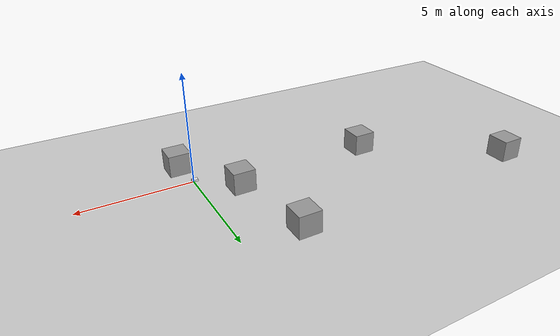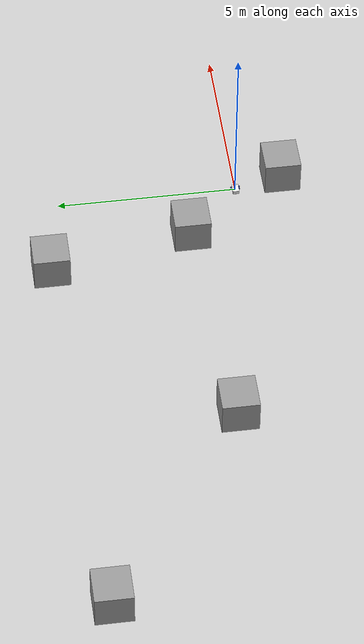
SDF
<sdf version="1.7">
 <world name="default">
  <light name="sun" type="directional">
   <pose>0 0 10 0 -0 0</pose>
   <diffuse>0.8 0.8 0.8 1</diffuse>
   <specular>0.2 0.2 0.2 1</specular>
   <attenuation>
    <range>1000</range>
    <constant>0.9</constant>
    <linear>0.01</linear>
    <quadratic>0.001</quadratic>
   </attenuation>
   <direction>-0.5 0.1 -0.9</direction>
   <spot><inner_angle>0</inner_angle><outer_angle>0</outer_angle><falloff>0</falloff></spot>
  </light>
  <model name="ground_plane">
   <static>1</static>
   <link name="link">
    <collision name="collision">
     <geometry><plane><normal>0 0 1</normal><size>100 100</size></plane></geometry>
     <surface>
      <contact><collide_bitmask>65535</collide_bitmask></contact>
      <friction><ode><mu>100</mu><mu2>50</mu2></ode></friction>
     </surface>
    </collision>
    <visual name="visual">
     <cast_shadows>0</cast_shadows>
     <geometry><plane><normal>0 0 1</normal><size>100 100</size></plane></geometry>
     <material>
      <script><uri>file://media/materials/scripts/gazebo.material</uri><name>Gazebo/Grey</name></script>
     </material>
    </visual>
   </link>
  </model>
  <gravity>0 0 -9.8</gravity>
  <magnetic_field>6e-06 2.3e-05 -4.2e-05</magnetic_field>
  <atmosphere type="adiabatic"/>
  <physics type="ode">
   <max_step_size>0.001</max_step_size>
   <real_time_factor>1</real_time_factor>
   <real_time_update_rate>1000</real_time_update_rate>
  </physics>
  <scene><ambient>0.4 0.4 0.4 1</ambient><background>0.7 0.7 0.7 1</background><shadows>1</shadows></scene>
  <audio><device>default</device></audio>
  <spherical_coordinates>
   <surface_model>EARTH_WGS84</surface_model>
   <latitude_deg>0</latitude_deg>
   <longitude_deg>0</longitude_deg>
   <elevation>0</elevation>
   <heading_deg>0</heading_deg>
  </spherical_coordinates>
  <model name="my_bot">
   <link name="base_link">
    <inertial>
     <pose>-0.052174 0 0.024348 0 -0 0</pose>
     <mass>2.3</mass>
     <inertia>
      <ixx>0.00873886</ixx>
      <ixy>0</ixy>
      <ixz>-0.00224174</ixz>
      <iyy>0.018838</iyy>
      <iyz>0</iyz>
      <izz>0.0209931</izz>
     </inertia>
    </inertial>
    <collision name="base_link_fixed_joint_lump__chassis_collision">
     <pose>-0.055 0 0.02 0 -0 0</pose>
     <geometry><box><size>0.27 0.18 0.1</size></box></geometry>
    </collision>
    <collision name="base_link_fixed_joint_lump__caster_wheel_collision_1">
     <pose>-0.18 0 -0.04 0 -0 0</pose>
     <geometry><sphere><radius>0.01</radius></sphere></geometry>
     <surface><friction><ode><mu>0.001</mu><mu2>0.001</mu2></ode></friction></surface>
    </collision>
    <collision name="base_link_fixed_joint_lump__laser_frame_collision_2">
     <pose>0.04 0 0.1 0 -0 0</pose>
     <geometry><cylinder><length>0.04</length><radius>0.03</radius></cylinder></geometry>
    </collision>
    <visual name="base_link_fixed_joint_lump__chassis_visual">
     <pose>-0.055 0 0.02 0 -0 0</pose>
     <geometry><box><size>0.27 0.18 0.1</size></box></geometry>
     <material>
      <script><name>Gazebo/White</name><uri>file://media/materials/scripts/gazebo.material</uri></script>
     </material>
    </visual>
    <visual name="base_link_fixed_joint_lump__camera_link_visual_1">
     <pose>0.08 0 0.02 0 -0 0</pose>
     <geometry><box><size>0.01 0.05 0.02</size></box></geometry>
     <material>
      <script><name>Gazebo/Red</name><uri>file://media/materials/scripts/gazebo.material</uri></script>
     </material>
    </visual>
    <visual name="base_link_fixed_joint_lump__caster_wheel_visual_2">
     <pose>-0.18 0 -0.04 0 -0 0</pose>
     <geometry><sphere><radius>0.01</radius></sphere></geometry>
     <material>
      <script><name>Gazebo/Black</name><uri>file://media/materials/scripts/gazebo.material</uri></script>
     </material>
    </visual>
    <visual name="base_link_fixed_joint_lump__laser_frame_visual_3">
     <pose>0.04 0 0.1 0 -0 0</pose>
     <geometry><cylinder><length>0.04</length><radius>0.03</radius></cylinder></geometry>
     <material>
      <script><name>Gazebo/Red</name><uri>file://media/materials/scripts/gazebo.material</uri></script>
     </material>
    </visual>
    <sensor name="camera" type="camera">
     <visualize>1</visualize>
     <update_rate>10</update_rate>
     <camera>
      <horizontal_fov>1.089</horizontal_fov>
      <image><format>R8G8B8</format><width>640</width><height>480</height></image>
      <clip><near>0.05</near><far>8</far></clip>
     </camera>
     <plugin name="camera_controller" filename="libgazebo_ros_camera.so">
      <frame_name>camera_link_optical</frame_name>
     </plugin>
     <pose>0.08 0 0.02 0 -0 0</pose>
    </sensor>
    <sensor name="laser" type="ray">
     <visualize>1</visualize>
     <update_rate>10</update_rate>
     <ray>
      <scan>
       <horizontal>
        <samples>360</samples>
        <min_angle>-3.14</min_angle>
        <max_angle>3.14</max_angle>
        <resolution>1</resolution>
       </horizontal>
       <vertical><samples>1</samples><min_angle>0</min_angle><max_angle>0</max_angle></vertical>
      </scan>
      <range><min>0.3</min><max>12</max></range>
     </ray>
     <plugin name="laser_controller" filename="libgazebo_ros_ray_sensor.so">
      <ros><argument>~/out:=scan</argument></ros>
      <output_type>sensor_msgs/LaserScan</output_type>
      <frame_name>laser_frame</frame_name>
     </plugin>
     <pose>0.04 0 0.1 0 -0 0</pose>
    </sensor>
   </link>
   <joint name="left_wheel_joint" type="revolute">
    <pose relative_to="base_link">0 0.1175 0 -1.5708 0 0</pose>
    <parent>base_link</parent>
    <child>left_wheel</child>
    <axis>
     <xyz>0 0 1</xyz>
     <limit><lower>-1e+16</lower><upper>1e+16</upper></limit>
     <dynamics><spring_reference>0</spring_reference><spring_stiffness>0</spring_stiffness></dynamics>
    </axis>
   </joint>
   <link name="left_wheel">
    <pose relative_to="left_wheel_joint">0 0 0 0 -0 0</pose>
    <inertial>
     <mass>0.2</mass>
     <inertia>
      <ixx>0.000144479</ixx>
      <ixy>0</ixy>
      <ixz>0</ixz>
      <iyy>0.000144479</iyy>
      <iyz>0</iyz>
      <izz>0.000275625</izz>
     </inertia>
    </inertial>
    <collision name="left_wheel_collision"><geometry><sphere><radius>0.05</radius></sphere></geometry></collision>
    <visual name="left_wheel_visual">
     <geometry><cylinder><length>0.02</length><radius>0.05</radius></cylinder></geometry>
     <material>
      <script><name>Gazebo/Blue</name><uri>file://media/materials/scripts/gazebo.material</uri></script>
     </material>
    </visual>
   </link>
   <joint name="right_wheel_joint" type="revolute">
    <pose relative_to="base_link">0 -0.1175 0 1.5708 -0 0</pose>
    <parent>base_link</parent>
    <child>right_wheel</child>
    <axis>
     <xyz>0 0 -1</xyz>
     <limit><lower>-1e+16</lower><upper>1e+16</upper></limit>
     <dynamics><spring_reference>0</spring_reference><spring_stiffness>0</spring_stiffness></dynamics>
    </axis>
   </joint>
   <link name="right_wheel">
    <pose relative_to="right_wheel_joint">0 0 0 0 -0 0</pose>
    <inertial>
     <mass>0.2</mass>
     <inertia>
      <ixx>0.000144479</ixx>
      <ixy>0</ixy>
      <ixz>0</ixz>
      <iyy>0.000144479</iyy>
      <iyz>0</iyz>
      <izz>0.000275625</izz>
     </inertia>
    </inertial>
    <collision name="right_wheel_collision">
     <geometry><sphere><radius>0.0525</radius></sphere></geometry>
    </collision>
    <visual name="right_wheel_visual">
     <geometry><cylinder><length>0.02</length><radius>0.0525</radius></cylinder></geometry>
     <material>
      <script><name>Gazebo/Blue</name><uri>file://media/materials/scripts/gazebo.material</uri></script>
     </material>
    </visual>
   </link>
   <static>0</static>
   <plugin name="gazebo_ros2_control" filename="libgazebo_ros2_control.so">
    <parameters>/home/pentagon/dev_ws/install/goat/share/goat/config/my_controllers.yaml</parameters>
    <parameters>/home/pentagon/dev_ws/install/goat/share/goat/config/gaz_ros2_ctl_use_sim.yaml</parameters>
   </plugin>
   <pose>0.002241 -0.013061 0.051246 -0.010608 -0.006939 0.003292</pose>
  </model>
  <model name="unit_box">
   <pose>0.26407 -1.32078 0.499995 0 1e-05 0</pose>
   <link name="link">
    <inertial>
     <mass>1</mass>
     <inertia>
      <ixx>0.166667</ixx>
      <ixy>0</ixy>
      <ixz>0</ixz>
      <iyy>0.166667</iyy>
      <iyz>0</iyz>
      <izz>0.166667</izz>
     </inertia>
    </inertial>
    <collision name="collision"><geometry><box><size>1 1 1</size></box></geometry></collision>
    <visual name="visual">
     <geometry><box><size>1 1 1</size></box></geometry>
     <material>
      <script><name>Gazebo/Grey</name><uri>file://media/materials/scripts/gazebo.material</uri></script>
     </material>
    </visual>
   </link>
  </model>
  <model name="unit_box_0">
   <pose>-13.5791 5.08556 0.499995 -1e-05 -0 -0</pose>
   <link name="link">
    <inertial>
     <mass>1</mass>
     <inertia>
      <ixx>0.166667</ixx>
      <ixy>0</ixy>
      <ixz>0</ixz>
      <iyy>0.166667</iyy>
      <iyz>0</iyz>
      <izz>0.166667</izz>
     </inertia>
    </inertial>
    <collision name="collision"><geometry><box><size>1 1 1</size></box></geometry></collision>
    <visual name="visual">
     <geometry><box><size>1 1 1</size></box></geometry>
     <material>
      <script><name>Gazebo/Grey</name><uri>file://media/materials/scripts/gazebo.material</uri></script>
     </material>
    </visual>
   </link>
  </model>
  <model name="unit_box_1">
   <pose>-8.01348 1.09757 0.499995 0 1e-05 0</pose>
   <link name="link">
    <inertial>
     <mass>1</mass>
     <inertia>
      <ixx>0.166667</ixx>
      <ixy>0</ixy>
      <ixz>0</ixz>
      <iyy>0.166667</iyy>
      <iyz>0</iyz>
      <izz>0.166667</izz>
     </inertia>
    </inertial>
    <collision name="collision"><geometry><box><size>1 1 1</size></box></geometry></collision>
    <visual name="visual">
     <geometry><box><size>1 1 1</size></box></geometry>
     <material>
      <script><name>Gazebo/Grey</name><uri>file://media/materials/scripts/gazebo.material</uri></script>
     </material>
    </visual>
   </link>
  </model>
  <model name="unit_box_2">
   <pose>-2.42469 5.44928 0.499995 -1e-05 -0 0</pose>
   <link name="link">
    <inertial>
     <mass>1</mass>
     <inertia>
      <ixx>0.166667</ixx>
      <ixy>0</ixy>
      <ixz>0</ixz>
      <iyy>0.166667</iyy>
      <iyz>0</iyz>
      <izz>0.166667</izz>
     </inertia>
    </inertial>
    <collision name="collision"><geometry><box><size>1 1 1</size></box></geometry></collision>
    <visual name="visual">
     <geometry><box><size>1 1 1</size></box></geometry>
     <material>
      <script><name>Gazebo/Grey</name><uri>file://media/materials/scripts/gazebo.material</uri></script>
     </material>
    </visual>
   </link>
  </model>
  <model name="unit_box_3">
   <pose>-1.59455 1.4718 0.5 0 -0 0</pose>
   <link name="link">
    <inertial>
     <mass>1</mass>
     <inertia>
      <ixx>0.166667</ixx>
      <ixy>0</ixy>
      <ixz>0</ixz>
      <iyy>0.166667</iyy>
      <iyz>0</iyz>
      <izz>0.166667</izz>
     </inertia>
    </inertial>
    <collision name="collision"><geometry><box><size>1 1 1</size></box></geometry></collision>
    <visual name="visual">
     <geometry><box><size>1 1 1</size></box></geometry>
     <material>
      <script><name>Gazebo/Grey</name><uri>file://media/materials/scripts/gazebo.material</uri></script>
     </material>
    </visual>
   </link>
  </model>
 </world>
</sdf>
